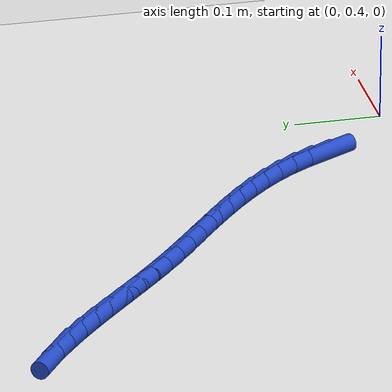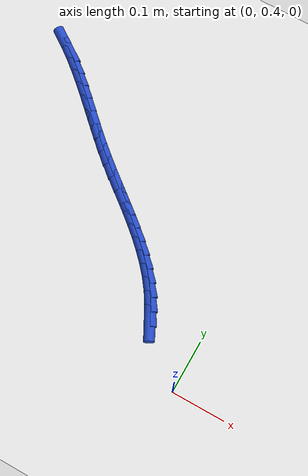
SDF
<sdf version="1.6">
 <world name="default">
  <model name="ground_plane">
   <static>1</static>
   <link name="link">
    <collision name="collision">
     <geometry><plane><normal>0 0 1</normal><size>100 100</size></plane></geometry>
     <surface><friction><ode><mu>100</mu><mu2>50</mu2></ode></friction></surface>
    </collision>
    <visual name="visual">
     <cast_shadows>0</cast_shadows>
     <geometry><plane><normal>0 0 1</normal><size>100 100</size></plane></geometry>
     <material>
      <script><uri>file://media/materials/scripts/gazebo.material</uri><name>Gazebo/WhiteGlow</name></script>
     </material>
    </visual>
   </link>
  </model>
  <model name="line">
   <link name="link_19">
    <pose>-0.0951155876593742 0.4899575258552115 0.01 0 1.57 -1.0882981726788168</pose>
    <collision name="collision">
     <geometry><cylinder><radius>0.01</radius><length>0.08</length></cylinder></geometry>
    </collision>
    <visual name="visual">
     <material>
      <script><name>Gazebo/Blue</name><uri>file://media/materials/scripts/gazebo.material</uri></script>
     </material>
     <geometry><cylinder><radius>0.01</radius><length>0.08</length></cylinder></geometry>
    </visual>
   </link>
   <link name="link_20">
    <pose>-0.10693953653219725 0.5125313506878628 0.01 0 1.57 -1.0183073336183666</pose>
    <collision name="collision">
     <geometry><cylinder><radius>0.01</radius><length>0.08</length></cylinder></geometry>
    </collision>
    <visual name="visual">
     <material>
      <script><name>Gazebo/Blue</name><uri>file://media/materials/scripts/gazebo.material</uri></script>
     </material>
     <geometry><cylinder><radius>0.01</radius><length>0.08</length></cylinder></geometry>
    </visual>
   </link>
   <link name="link_21">
    <pose>-0.12023689545793037 0.5340992385406953 0.01 0 1.57 -0.9420895317729406</pose>
    <collision name="collision">
     <geometry><cylinder><radius>0.01</radius><length>0.08</length></cylinder></geometry>
    </collision>
    <visual name="visual">
     <material>
      <script><name>Gazebo/Blue</name><uri>file://media/materials/scripts/gazebo.material</uri></script>
     </material>
     <geometry><cylinder><radius>0.01</radius><length>0.08</length></cylinder></geometry>
    </visual>
   </link>
   <link name="link_22">
    <pose>-0.1351202324993757 0.554567677558318 0.01 0 1.57 -0.8710030178113921</pose>
    <collision name="collision">
     <geometry><cylinder><radius>0.01</radius><length>0.08</length></cylinder></geometry>
    </collision>
    <visual name="visual">
     <material>
      <script><name>Gazebo/Blue</name><uri>file://media/materials/scripts/gazebo.material</uri></script>
     </material>
     <geometry><cylinder><radius>0.01</radius><length>0.08</length></cylinder></geometry>
    </visual>
   </link>
   <link name="link_23">
    <pose>-0.15149083258360527 0.5740116938617681 0.01 0 1.57 -0.8113089329092253</pose>
    <collision name="collision">
     <geometry><cylinder><radius>0.01</radius><length>0.08</length></cylinder></geometry>
    </collision>
    <visual name="visual">
     <material>
      <script><name>Gazebo/Blue</name><uri>file://media/materials/scripts/gazebo.material</uri></script>
     </material>
     <geometry><cylinder><radius>0.01</radius><length>0.08</length></cylinder></geometry>
    </visual>
   </link>
   <link name="link_24">
    <pose>-0.1691367751752937 0.5925966161865669 0.01 0 1.57 -0.7630994874894123</pose>
    <collision name="collision">
     <geometry><cylinder><radius>0.01</radius><length>0.08</length></cylinder></geometry>
    </collision>
    <visual name="visual">
     <material>
      <script><name>Gazebo/Blue</name><uri>file://media/materials/scripts/gazebo.material</uri></script>
     </material>
     <geometry><cylinder><radius>0.01</radius><length>0.08</length></cylinder></geometry>
    </visual>
   </link>
   <link name="link_25">
    <pose>-0.18784506398596304 0.6104886313833853 0.01 0 1.57 -0.7260915848996364</pose>
    <collision name="collision">
     <geometry><cylinder><radius>0.01</radius><length>0.08</length></cylinder></geometry>
    </collision>
    <visual name="visual">
     <material>
      <script><name>Gazebo/Blue</name><uri>file://media/materials/scripts/gazebo.material</uri></script>
     </material>
     <geometry><cylinder><radius>0.01</radius><length>0.08</length></cylinder></geometry>
    </visual>
   </link>
   <link name="link_26">
    <pose>-0.20740270272713535 0.6278539263028938 0.01 0 1.57 -0.699872420583987</pose>
    <collision name="collision">
     <geometry><cylinder><radius>0.01</radius><length>0.08</length></cylinder></geometry>
    </collision>
    <visual name="visual">
     <material>
      <script><name>Gazebo/Blue</name><uri>file://media/materials/scripts/gazebo.material</uri></script>
     </material>
     <geometry><cylinder><radius>0.01</radius><length>0.08</length></cylinder></geometry>
    </visual>
   </link>
   <link name="link_27">
    <pose>-0.22759669511033276 0.6448586877957634 0.01 0 1.57 -0.6840325812757173</pose>
    <collision name="collision">
     <geometry><cylinder><radius>0.01</radius><length>0.08</length></cylinder></geometry>
    </collision>
    <visual name="visual">
     <material>
      <script><name>Gazebo/Blue</name><uri>file://media/materials/scripts/gazebo.material</uri></script>
     </material>
     <geometry><cylinder><radius>0.01</radius><length>0.08</length></cylinder></geometry>
    </visual>
   </link>
   <link name="link_28">
    <pose>-0.24821404484707732 0.6616691027126641 0.01 0 1.57 -0.6782467447179322</pose>
    <collision name="collision">
     <geometry><cylinder><radius>0.01</radius><length>0.08</length></cylinder></geometry>
    </collision>
    <visual name="visual">
     <material>
      <script><name>Gazebo/Blue</name><uri>file://media/materials/scripts/gazebo.material</uri></script>
     </material>
     <geometry><cylinder><radius>0.01</radius><length>0.08</length></cylinder></geometry>
    </visual>
   </link>
   <link name="link_29">
    <pose>-0.269041755648891 0.6784513579042669 0.01 0 1.57 -0.6823139056688585</pose>
    <collision name="collision">
     <geometry><cylinder><radius>0.01</radius><length>0.08</length></cylinder></geometry>
    </collision>
    <visual name="visual">
     <material>
      <script><name>Gazebo/Blue</name><uri>file://media/materials/scripts/gazebo.material</uri></script>
     </material>
     <geometry><cylinder><radius>0.01</radius><length>0.08</length></cylinder></geometry>
    </visual>
   </link>
   <link name="link_30">
    <pose>-0.28986683122729595 0.6953716402212424 0.01 0 1.57 -0.696167194310899</pose>
    <collision name="collision">
     <geometry><cylinder><radius>0.01</radius><length>0.08</length></cylinder></geometry>
    </collision>
    <visual name="visual">
     <material>
      <script><name>Gazebo/Blue</name><uri>file://media/materials/scripts/gazebo.material</uri></script>
     </material>
     <geometry><cylinder><radius>0.01</radius><length>0.08</length></cylinder></geometry>
    </visual>
   </link>
   <link name="link_31">
    <pose>-0.3104762752938142 0.7125961365142612 0.01 0 1.57 -0.7189831504060218</pose>
    <collision name="collision">
     <geometry><cylinder><radius>0.01</radius><length>0.08</length></cylinder></geometry>
    </collision>
    <visual name="visual">
     <material>
      <script><name>Gazebo/Blue</name><uri>file://media/materials/scripts/gazebo.material</uri></script>
     </material>
     <geometry><cylinder><radius>0.01</radius><length>0.08</length></cylinder></geometry>
    </visual>
   </link>
   <link name="link_32">
    <pose>-0.33067357273106607 0.7302742339915279 0.01 0 1.57 -0.7404757256802703</pose>
    <collision name="collision">
     <geometry><cylinder><radius>0.01</radius><length>0.08</length></cylinder></geometry>
    </collision>
    <visual name="visual">
     <material>
      <script><name>Gazebo/Blue</name><uri>file://media/materials/scripts/gazebo.material</uri></script>
     </material>
     <geometry><cylinder><radius>0.01</radius><length>0.08</length></cylinder></geometry>
    </visual>
   </link>
   <link name="link_33">
    <pose>-0.3504576332478125 0.7483561187736164 0.01 0 1.57 -0.7538716692492</pose>
    <collision name="collision">
     <geometry><cylinder><radius>0.01</radius><length>0.08</length></cylinder></geometry>
    </collision>
    <visual name="visual">
     <material>
      <script><name>Gazebo/Blue</name><uri>file://media/materials/scripts/gazebo.material</uri></script>
     </material>
     <geometry><cylinder><radius>0.01</radius><length>0.08</length></cylinder></geometry>
    </visual>
   </link>
   <link name="link_34">
    <pose>-0.36995529046351955 0.7666615811524354 0.01 0 1.57 -0.7590361274240356</pose>
    <collision name="collision">
     <geometry><cylinder><radius>0.01</radius><length>0.08</length></cylinder></geometry>
    </collision>
    <visual name="visual">
     <material>
      <script><name>Gazebo/Blue</name><uri>file://media/materials/scripts/gazebo.material</uri></script>
     </material>
     <geometry><cylinder><radius>0.01</radius><length>0.08</length></cylinder></geometry>
    </visual>
   </link>
   <link name="link_35">
    <pose>-0.38929559443232964 0.7850081521562844 0.01 0 1.57 -0.7559058540276596</pose>
    <collision name="collision">
     <geometry><cylinder><radius>0.01</radius><length>0.08</length></cylinder></geometry>
    </collision>
    <visual name="visual">
     <material>
      <script><name>Gazebo/Blue</name><uri>file://media/materials/scripts/gazebo.material</uri></script>
     </material>
     <geometry><cylinder><radius>0.01</radius><length>0.08</length></cylinder></geometry>
    </visual>
   </link>
   <link name="link_36">
    <pose>-0.4086075952083847 0.8032133628134619 0.01 0 1.57 -0.7443593580019027</pose>
    <collision name="collision">
     <geometry><cylinder><radius>0.01</radius><length>0.08</length></cylinder></geometry>
    </collision>
    <visual name="visual">
     <material>
      <script><name>Gazebo/Blue</name><uri>file://media/materials/scripts/gazebo.material</uri></script>
     </material>
     <geometry><cylinder><radius>0.01</radius><length>0.08</length></cylinder></geometry>
    </visual>
   </link>
   <link name="link_37">
    <pose>-0.4280203428458269 0.8210947441522676 0.01 0 1.57 -0.72422103832527</pose>
    <collision name="collision">
     <geometry><cylinder><radius>0.01</radius><length>0.08</length></cylinder></geometry>
    </collision>
    <visual name="visual">
     <material>
      <script><name>Gazebo/Blue</name><uri>file://media/materials/scripts/gazebo.material</uri></script>
     </material>
     <geometry><cylinder><radius>0.01</radius><length>0.08</length></cylinder></geometry>
    </visual>
   </link>
   <link name="link_38">
    <pose>-0.4476628873987986 0.8384698272010004 0.01 0 1.57 -0.6952835826102192</pose>
    <collision name="collision">
     <geometry><cylinder><radius>0.01</radius><length>0.08</length></cylinder></geometry>
    </collision>
    <visual name="visual">
     <material>
      <script><name>Gazebo/Blue</name><uri>file://media/materials/scripts/gazebo.material</uri></script>
     </material>
     <geometry><cylinder><radius>0.01</radius><length>0.08</length></cylinder></geometry>
    </visual>
   </link>
   <link name="link_39">
    <pose>-0.4676642789214419 0.8551561429879595 0.01 0 1.57 -0.6573519959993188</pose>
    <collision name="collision">
     <geometry><cylinder><radius>0.01</radius><length>0.08</length></cylinder></geometry>
    </collision>
    <visual name="visual">
     <material>
      <script><name>Gazebo/Blue</name><uri>file://media/materials/scripts/gazebo.material</uri></script>
     </material>
     <geometry><cylinder><radius>0.01</radius><length>0.08</length></cylinder></geometry>
    </visual>
   </link>
   <link name="link_40">
    <pose>-0.48815356746789873 0.8709712225414437 0.01 0 1.57 -0.6103127672021218</pose>
    <collision name="collision">
     <geometry><cylinder><radius>0.01</radius><length>0.08</length></cylinder></geometry>
    </collision>
    <visual name="visual">
     <material>
      <script><name>Gazebo/Blue</name><uri>file://media/materials/scripts/gazebo.material</uri></script>
     </material>
     <geometry><cylinder><radius>0.01</radius><length>0.08</length></cylinder></geometry>
    </visual>
   </link>
  </model>
 </world>
</sdf>
